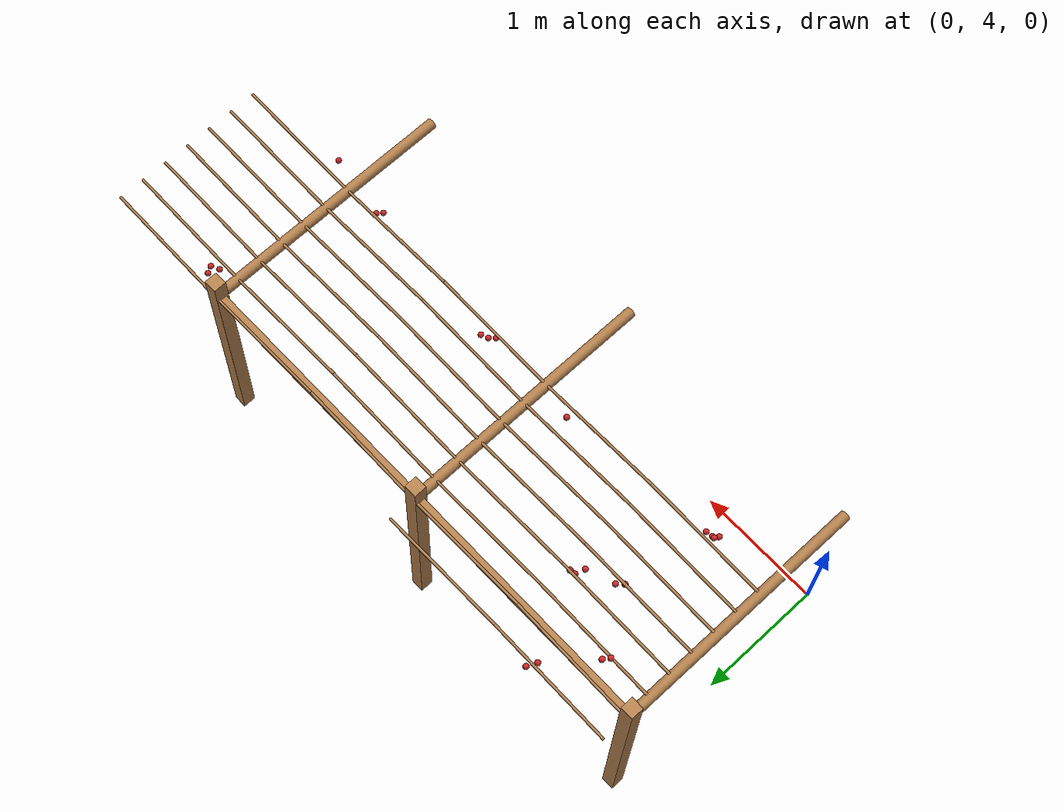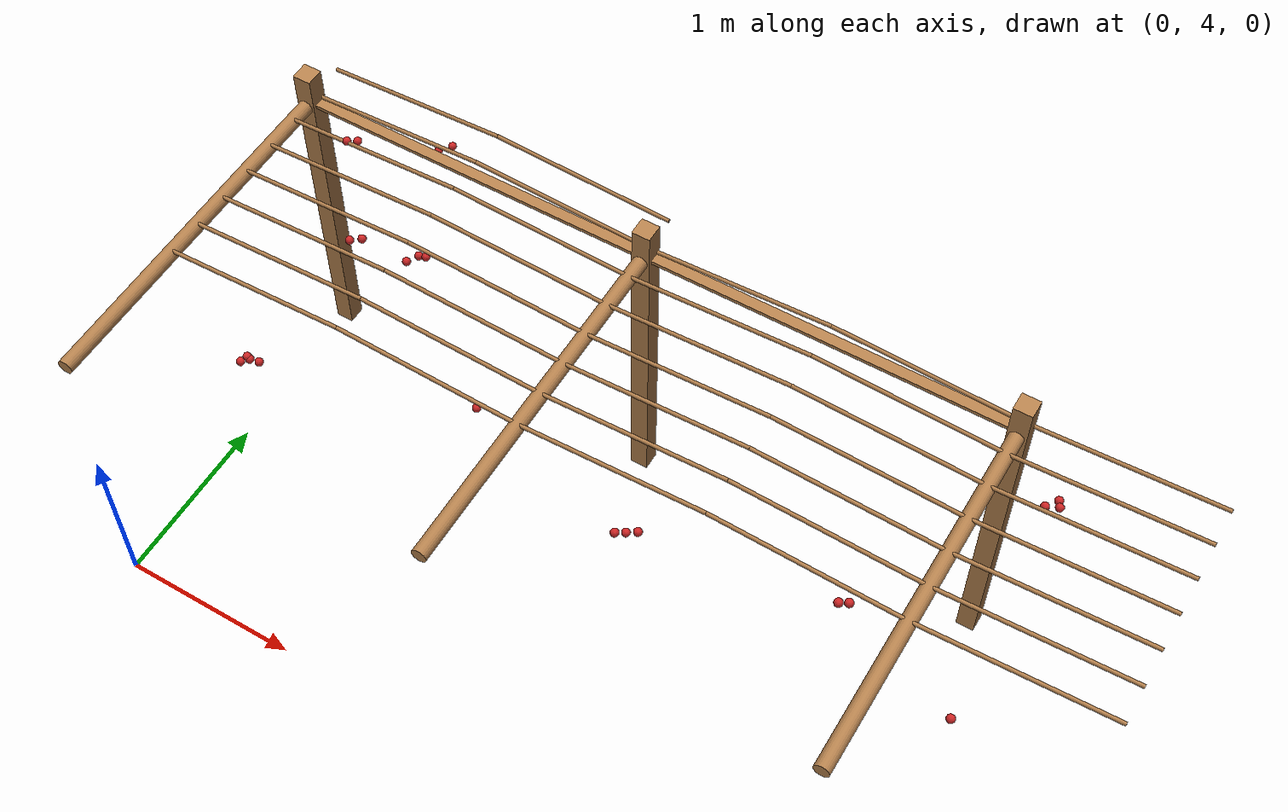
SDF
<sdf version="1.4">
 <model name="pergola">
  <include><name>post_3</name><pose>0.0 6.0 0 0 0 0</pose><uri>model://post</uri></include>
  <include><name>post_14</name><pose>2.0 6.0 0 0 0 0</pose><uri>model://post</uri></include>
  <include><name>post_25</name><pose>4.0 6.0 0 0 0 0</pose><uri>model://post</uri></include>
  <link name="beam_3">
   <pose>1.0 6.0 1.81 0 0 0</pose>
   <collision name="collision"><geometry><box><size>2.0 0.06 0.02</size></box></geometry></collision>
   <visual name="visual">
    <geometry><box><size>2.0 0.06 0.02</size></box></geometry>
    <material><script><name>Gazebo/Wood</name></script></material>
   </visual>
   <inertial>
    <mass>5</mass>
    <inertia>
     <ixx>0.0016666666666666668</ixx>
     <ixy>0.0</ixy>
     <ixz>0.0</ixz>
     <iyy>1.6681666666666664</iyy>
     <iyz>0.0</iyz>
     <izz>1.6668333333333332</izz>
    </inertia>
   </inertial>
  </link>
  <link name="beam_14">
   <pose>3.0 6.0 1.81 0 0 0</pose>
   <collision name="collision"><geometry><box><size>2.0 0.06 0.02</size></box></geometry></collision>
   <visual name="visual">
    <geometry><box><size>2.0 0.06 0.02</size></box></geometry>
    <material><script><name>Gazebo/Wood</name></script></material>
   </visual>
   <inertial>
    <mass>5</mass>
    <inertia>
     <ixx>0.0016666666666666668</ixx>
     <ixy>0.0</ixy>
     <ixz>0.0</ixz>
     <iyy>1.6681666666666664</iyy>
     <iyz>0.0</iyz>
     <izz>1.6668333333333332</izz>
    </inertia>
   </inertial>
  </link>
  <link name="baseBranch_2">
   <pose>0.0 5.0 1.8 1.5707963267948966 0 0</pose>
   <collision name="collision">
    <geometry><cylinder><radius>0.04</radius><length>1.94</length></cylinder></geometry>
   </collision>
   <visual name="visual">
    <geometry><cylinder><radius>0.04</radius><length>1.94</length></cylinder></geometry>
    <material><script><name>Gazebo/WoodFloor</name></script></material>
   </visual>
   <inertial>
    <mass>10</mass>
    <inertia>
     <ixx>3.140333333333333</ixx>
     <ixy>0.0</ixy>
     <ixz>0.0</ixz>
     <iyy>3.140333333333333</iyy>
     <iyz>0.0</iyz>
     <izz>0.008</izz>
    </inertia>
   </inertial>
  </link>
  <link name="baseBranch_12">
   <pose>2.0 5.0 1.8 1.5707963267948966 0 0</pose>
   <collision name="collision">
    <geometry><cylinder><radius>0.04</radius><length>1.94</length></cylinder></geometry>
   </collision>
   <visual name="visual">
    <geometry><cylinder><radius>0.04</radius><length>1.94</length></cylinder></geometry>
    <material><script><name>Gazebo/WoodFloor</name></script></material>
   </visual>
   <inertial>
    <mass>10</mass>
    <inertia>
     <ixx>3.140333333333333</ixx>
     <ixy>0.0</ixy>
     <ixz>0.0</ixz>
     <iyy>3.140333333333333</iyy>
     <iyz>0.0</iyz>
     <izz>0.008</izz>
    </inertia>
   </inertial>
  </link>
  <link name="baseBranch_22">
   <pose>4.0 5.0 1.8 1.5707963267948966 0 0</pose>
   <collision name="collision">
    <geometry><cylinder><radius>0.04</radius><length>1.94</length></cylinder></geometry>
   </collision>
   <visual name="visual">
    <geometry><cylinder><radius>0.04</radius><length>1.94</length></cylinder></geometry>
    <material><script><name>Gazebo/WoodFloor</name></script></material>
   </visual>
   <inertial>
    <mass>10</mass>
    <inertia>
     <ixx>3.140333333333333</ixx>
     <ixy>0.0</ixy>
     <ixz>0.0</ixz>
     <iyy>3.140333333333333</iyy>
     <iyz>0.0</iyz>
     <izz>0.008</izz>
    </inertia>
   </inertial>
  </link>
  <link name="vine_48">
   <pose>0.5 4.830000000000001 1.85 0 1.5208379310729538 0</pose>
   <collision name="collision">
    <geometry><cylinder><radius>0.01</radius><length>1.0012492197250393</length></cylinder></geometry>
   </collision>
   <visual name="visual">
    <geometry><cylinder><radius>0.01</radius><length>1.0012492197250393</length></cylinder></geometry>
    <material><script><name>Gazebo/WoodFloor</name></script></material>
   </visual>
   <inertial>
    <mass>5</mass>
    <inertia>
     <ixx>0.41783333333333345</ixx>
     <ixy>0.0</ixy>
     <ixz>0.0</ixz>
     <iyy>0.41783333333333345</iyy>
     <iyz>0.0</iyz>
     <izz>0.00025</izz>
    </inertia>
   </inertial>
  </link>
  <link name="vine_49">
   <pose>1.5 4.830000000000001 1.85 0 -1.5208379310729538 0</pose>
   <collision name="collision">
    <geometry><cylinder><radius>0.01</radius><length>1.0012492197250393</length></cylinder></geometry>
   </collision>
   <visual name="visual">
    <geometry><cylinder><radius>0.01</radius><length>1.0012492197250393</length></cylinder></geometry>
    <material><script><name>Gazebo/WoodFloor</name></script></material>
   </visual>
   <inertial>
    <mass>5</mass>
    <inertia>
     <ixx>0.41783333333333345</ixx>
     <ixy>0.0</ixy>
     <ixz>0.0</ixz>
     <iyy>0.41783333333333345</iyy>
     <iyz>0.0</iyz>
     <izz>0.00025</izz>
    </inertia>
   </inertial>
  </link>
  <link name="vine_50">
   <pose>0.5 5.03 1.85 0 1.5208379310729538 0</pose>
   <collision name="collision">
    <geometry><cylinder><radius>0.01</radius><length>1.0012492197250393</length></cylinder></geometry>
   </collision>
   <visual name="visual">
    <geometry><cylinder><radius>0.01</radius><length>1.0012492197250393</length></cylinder></geometry>
    <material><script><name>Gazebo/WoodFloor</name></script></material>
   </visual>
   <inertial>
    <mass>5</mass>
    <inertia>
     <ixx>0.41783333333333345</ixx>
     <ixy>0.0</ixy>
     <ixz>0.0</ixz>
     <iyy>0.41783333333333345</iyy>
     <iyz>0.0</iyz>
     <izz>0.00025</izz>
    </inertia>
   </inertial>
  </link>
  <link name="vine_51">
   <pose>1.5 5.03 1.85 0 -1.5208379310729538 0</pose>
   <collision name="collision">
    <geometry><cylinder><radius>0.01</radius><length>1.0012492197250393</length></cylinder></geometry>
   </collision>
   <visual name="visual">
    <geometry><cylinder><radius>0.01</radius><length>1.0012492197250393</length></cylinder></geometry>
    <material><script><name>Gazebo/WoodFloor</name></script></material>
   </visual>
   <inertial>
    <mass>5</mass>
    <inertia>
     <ixx>0.41783333333333345</ixx>
     <ixy>0.0</ixy>
     <ixz>0.0</ixz>
     <iyy>0.41783333333333345</iyy>
     <iyz>0.0</iyz>
     <izz>0.00025</izz>
    </inertia>
   </inertial>
  </link>
  <link name="vine_52">
   <pose>0.5 5.23 1.85 0 1.5208379310729538 0</pose>
   <collision name="collision">
    <geometry><cylinder><radius>0.01</radius><length>1.0012492197250393</length></cylinder></geometry>
   </collision>
   <visual name="visual">
    <geometry><cylinder><radius>0.01</radius><length>1.0012492197250393</length></cylinder></geometry>
    <material><script><name>Gazebo/WoodFloor</name></script></material>
   </visual>
   <inertial>
    <mass>5</mass>
    <inertia>
     <ixx>0.41783333333333345</ixx>
     <ixy>0.0</ixy>
     <ixz>0.0</ixz>
     <iyy>0.41783333333333345</iyy>
     <iyz>0.0</iyz>
     <izz>0.00025</izz>
    </inertia>
   </inertial>
  </link>
  <link name="vine_53">
   <pose>1.5 5.23 1.85 0 -1.5208379310729538 0</pose>
   <collision name="collision">
    <geometry><cylinder><radius>0.01</radius><length>1.0012492197250393</length></cylinder></geometry>
   </collision>
   <visual name="visual">
    <geometry><cylinder><radius>0.01</radius><length>1.0012492197250393</length></cylinder></geometry>
    <material><script><name>Gazebo/WoodFloor</name></script></material>
   </visual>
   <inertial>
    <mass>5</mass>
    <inertia>
     <ixx>0.41783333333333345</ixx>
     <ixy>0.0</ixy>
     <ixz>0.0</ixz>
     <iyy>0.41783333333333345</iyy>
     <iyz>0.0</iyz>
     <izz>0.00025</izz>
    </inertia>
   </inertial>
  </link>
  <link name="vine_54">
   <pose>0.5 5.430000000000001 1.85 0 1.5208379310729538 0</pose>
   <collision name="collision">
    <geometry><cylinder><radius>0.01</radius><length>1.0012492197250393</length></cylinder></geometry>
   </collision>
   <visual name="visual">
    <geometry><cylinder><radius>0.01</radius><length>1.0012492197250393</length></cylinder></geometry>
    <material><script><name>Gazebo/WoodFloor</name></script></material>
   </visual>
   <inertial>
    <mass>5</mass>
    <inertia>
     <ixx>0.41783333333333345</ixx>
     <ixy>0.0</ixy>
     <ixz>0.0</ixz>
     <iyy>0.41783333333333345</iyy>
     <iyz>0.0</iyz>
     <izz>0.00025</izz>
    </inertia>
   </inertial>
  </link>
  <link name="vine_55">
   <pose>1.5 5.430000000000001 1.85 0 -1.5208379310729538 0</pose>
   <collision name="collision">
    <geometry><cylinder><radius>0.01</radius><length>1.0012492197250393</length></cylinder></geometry>
   </collision>
   <visual name="visual">
    <geometry><cylinder><radius>0.01</radius><length>1.0012492197250393</length></cylinder></geometry>
    <material><script><name>Gazebo/WoodFloor</name></script></material>
   </visual>
   <inertial>
    <mass>5</mass>
    <inertia>
     <ixx>0.41783333333333345</ixx>
     <ixy>0.0</ixy>
     <ixz>0.0</ixz>
     <iyy>0.41783333333333345</iyy>
     <iyz>0.0</iyz>
     <izz>0.00025</izz>
    </inertia>
   </inertial>
  </link>
  <link name="vine_56">
   <pose>0.5 5.630000000000001 1.85 0 1.5208379310729538 0</pose>
   <collision name="collision">
    <geometry><cylinder><radius>0.01</radius><length>1.0012492197250393</length></cylinder></geometry>
   </collision>
   <visual name="visual">
    <geometry><cylinder><radius>0.01</radius><length>1.0012492197250393</length></cylinder></geometry>
    <material><script><name>Gazebo/WoodFloor</name></script></material>
   </visual>
   <inertial>
    <mass>5</mass>
    <inertia>
     <ixx>0.41783333333333345</ixx>
     <ixy>0.0</ixy>
     <ixz>0.0</ixz>
     <iyy>0.41783333333333345</iyy>
     <iyz>0.0</iyz>
     <izz>0.00025</izz>
    </inertia>
   </inertial>
  </link>
  <link name="vine_57">
   <pose>1.5 5.630000000000001 1.85 0 -1.5208379310729538 0</pose>
   <collision name="collision">
    <geometry><cylinder><radius>0.01</radius><length>1.0012492197250393</length></cylinder></geometry>
   </collision>
   <visual name="visual">
    <geometry><cylinder><radius>0.01</radius><length>1.0012492197250393</length></cylinder></geometry>
    <material><script><name>Gazebo/WoodFloor</name></script></material>
   </visual>
   <inertial>
    <mass>5</mass>
    <inertia>
     <ixx>0.41783333333333345</ixx>
     <ixy>0.0</ixy>
     <ixz>0.0</ixz>
     <iyy>0.41783333333333345</iyy>
     <iyz>0.0</iyz>
     <izz>0.00025</izz>
    </inertia>
   </inertial>
  </link>
  <link name="vine_58">
   <pose>0.5 5.830000000000001 1.85 0 1.5208379310729538 0</pose>
   <collision name="collision">
    <geometry><cylinder><radius>0.01</radius><length>1.0012492197250393</length></cylinder></geometry>
   </collision>
   <visual name="visual">
    <geometry><cylinder><radius>0.01</radius><length>1.0012492197250393</length></cylinder></geometry>
    <material><script><name>Gazebo/WoodFloor</name></script></material>
   </visual>
   <inertial>
    <mass>5</mass>
    <inertia>
     <ixx>0.41783333333333345</ixx>
     <ixy>0.0</ixy>
     <ixz>0.0</ixz>
     <iyy>0.41783333333333345</iyy>
     <iyz>0.0</iyz>
     <izz>0.00025</izz>
    </inertia>
   </inertial>
  </link>
  <link name="vine_59">
   <pose>1.5 5.830000000000001 1.85 0 -1.5208379310729538 0</pose>
   <collision name="collision">
    <geometry><cylinder><radius>0.01</radius><length>1.0012492197250393</length></cylinder></geometry>
   </collision>
   <visual name="visual">
    <geometry><cylinder><radius>0.01</radius><length>1.0012492197250393</length></cylinder></geometry>
    <material><script><name>Gazebo/WoodFloor</name></script></material>
   </visual>
   <inertial>
    <mass>5</mass>
    <inertia>
     <ixx>0.41783333333333345</ixx>
     <ixy>0.0</ixy>
     <ixz>0.0</ixz>
     <iyy>0.41783333333333345</iyy>
     <iyz>0.0</iyz>
     <izz>0.00025</izz>
    </inertia>
   </inertial>
  </link>
  <link name="vine_60">
   <pose>0.5 6.03 1.85 0 1.5208379310729538 0</pose>
   <collision name="collision">
    <geometry><cylinder><radius>0.01</radius><length>1.0012492197250393</length></cylinder></geometry>
   </collision>
   <visual name="visual">
    <geometry><cylinder><radius>0.01</radius><length>1.0012492197250393</length></cylinder></geometry>
    <material><script><name>Gazebo/WoodFloor</name></script></material>
   </visual>
   <inertial>
    <mass>5</mass>
    <inertia>
     <ixx>0.41783333333333345</ixx>
     <ixy>0.0</ixy>
     <ixz>0.0</ixz>
     <iyy>0.41783333333333345</iyy>
     <iyz>0.0</iyz>
     <izz>0.00025</izz>
    </inertia>
   </inertial>
  </link>
  <link name="vine_61">
   <pose>1.5 6.03 1.85 0 -1.5208379310729538 0</pose>
   <collision name="collision">
    <geometry><cylinder><radius>0.01</radius><length>1.0012492197250393</length></cylinder></geometry>
   </collision>
   <visual name="visual">
    <geometry><cylinder><radius>0.01</radius><length>1.0012492197250393</length></cylinder></geometry>
    <material><script><name>Gazebo/WoodFloor</name></script></material>
   </visual>
   <inertial>
    <mass>5</mass>
    <inertia>
     <ixx>0.41783333333333345</ixx>
     <ixy>0.0</ixy>
     <ixz>0.0</ixz>
     <iyy>0.41783333333333345</iyy>
     <iyz>0.0</iyz>
     <izz>0.00025</izz>
    </inertia>
   </inertial>
  </link>
  <link name="vine_62">
   <pose>0.5 6.23 1.85 0 1.5208379310729538 0</pose>
   <collision name="collision">
    <geometry><cylinder><radius>0.01</radius><length>1.0012492197250393</length></cylinder></geometry>
   </collision>
   <visual name="visual">
    <geometry><cylinder><radius>0.01</radius><length>1.0012492197250393</length></cylinder></geometry>
    <material><script><name>Gazebo/WoodFloor</name></script></material>
   </visual>
   <inertial>
    <mass>5</mass>
    <inertia>
     <ixx>0.41783333333333345</ixx>
     <ixy>0.0</ixy>
     <ixz>0.0</ixz>
     <iyy>0.41783333333333345</iyy>
     <iyz>0.0</iyz>
     <izz>0.00025</izz>
    </inertia>
   </inertial>
  </link>
  <link name="vine_63">
   <pose>1.5 6.23 1.85 0 -1.5208379310729538 0</pose>
   <collision name="collision">
    <geometry><cylinder><radius>0.01</radius><length>1.0012492197250393</length></cylinder></geometry>
   </collision>
   <visual name="visual">
    <geometry><cylinder><radius>0.01</radius><length>1.0012492197250393</length></cylinder></geometry>
    <material><script><name>Gazebo/WoodFloor</name></script></material>
   </visual>
   <inertial>
    <mass>5</mass>
    <inertia>
     <ixx>0.41783333333333345</ixx>
     <ixy>0.0</ixy>
     <ixz>0.0</ixz>
     <iyy>0.41783333333333345</iyy>
     <iyz>0.0</iyz>
     <izz>0.00025</izz>
    </inertia>
   </inertial>
  </link>
  <link name="vine_248">
   <pose>2.5 4.830000000000001 1.85 0 1.5208379310729538 0</pose>
   <collision name="collision">
    <geometry><cylinder><radius>0.01</radius><length>1.0012492197250393</length></cylinder></geometry>
   </collision>
   <visual name="visual">
    <geometry><cylinder><radius>0.01</radius><length>1.0012492197250393</length></cylinder></geometry>
    <material><script><name>Gazebo/WoodFloor</name></script></material>
   </visual>
   <inertial>
    <mass>5</mass>
    <inertia>
     <ixx>0.41783333333333345</ixx>
     <ixy>0.0</ixy>
     <ixz>0.0</ixz>
     <iyy>0.41783333333333345</iyy>
     <iyz>0.0</iyz>
     <izz>0.00025</izz>
    </inertia>
   </inertial>
  </link>
  <link name="vine_249">
   <pose>3.5 4.830000000000001 1.85 0 -1.5208379310729538 0</pose>
   <collision name="collision">
    <geometry><cylinder><radius>0.01</radius><length>1.0012492197250393</length></cylinder></geometry>
   </collision>
   <visual name="visual">
    <geometry><cylinder><radius>0.01</radius><length>1.0012492197250393</length></cylinder></geometry>
    <material><script><name>Gazebo/WoodFloor</name></script></material>
   </visual>
   <inertial>
    <mass>5</mass>
    <inertia>
     <ixx>0.41783333333333345</ixx>
     <ixy>0.0</ixy>
     <ixz>0.0</ixz>
     <iyy>0.41783333333333345</iyy>
     <iyz>0.0</iyz>
     <izz>0.00025</izz>
    </inertia>
   </inertial>
  </link>
  <link name="vine_250">
   <pose>2.5 5.03 1.85 0 1.5208379310729538 0</pose>
   <collision name="collision">
    <geometry><cylinder><radius>0.01</radius><length>1.0012492197250393</length></cylinder></geometry>
   </collision>
   <visual name="visual">
    <geometry><cylinder><radius>0.01</radius><length>1.0012492197250393</length></cylinder></geometry>
    <material><script><name>Gazebo/WoodFloor</name></script></material>
   </visual>
   <inertial>
    <mass>5</mass>
    <inertia>
     <ixx>0.41783333333333345</ixx>
     <ixy>0.0</ixy>
     <ixz>0.0</ixz>
     <iyy>0.41783333333333345</iyy>
     <iyz>0.0</iyz>
     <izz>0.00025</izz>
    </inertia>
   </inertial>
  </link>
  <link name="vine_251">
   <pose>3.5 5.03 1.85 0 -1.5208379310729538 0</pose>
   <collision name="collision">
    <geometry><cylinder><radius>0.01</radius><length>1.0012492197250393</length></cylinder></geometry>
   </collision>
   <visual name="visual">
    <geometry><cylinder><radius>0.01</radius><length>1.0012492197250393</length></cylinder></geometry>
    <material><script><name>Gazebo/WoodFloor</name></script></material>
   </visual>
   <inertial>
    <mass>5</mass>
    <inertia>
     <ixx>0.41783333333333345</ixx>
     <ixy>0.0</ixy>
     <ixz>0.0</ixz>
     <iyy>0.41783333333333345</iyy>
     <iyz>0.0</iyz>
     <izz>0.00025</izz>
    </inertia>
   </inertial>
  </link>
  <link name="vine_252">
   <pose>2.5 5.23 1.85 0 1.5208379310729538 0</pose>
   <collision name="collision">
    <geometry><cylinder><radius>0.01</radius><length>1.0012492197250393</length></cylinder></geometry>
   </collision>
   <visual name="visual">
    <geometry><cylinder><radius>0.01</radius><length>1.0012492197250393</length></cylinder></geometry>
    <material><script><name>Gazebo/WoodFloor</name></script></material>
   </visual>
   <inertial>
    <mass>5</mass>
    <inertia>
     <ixx>0.41783333333333345</ixx>
     <ixy>0.0</ixy>
     <ixz>0.0</ixz>
     <iyy>0.41783333333333345</iyy>
     <iyz>0.0</iyz>
     <izz>0.00025</izz>
    </inertia>
   </inertial>
  </link>
  <link name="vine_253">
   <pose>3.5 5.23 1.85 0 -1.5208379310729538 0</pose>
   <collision name="collision">
    <geometry><cylinder><radius>0.01</radius><length>1.0012492197250393</length></cylinder></geometry>
   </collision>
   <visual name="visual">
    <geometry><cylinder><radius>0.01</radius><length>1.0012492197250393</length></cylinder></geometry>
    <material><script><name>Gazebo/WoodFloor</name></script></material>
   </visual>
   <inertial>
    <mass>5</mass>
    <inertia>
     <ixx>0.41783333333333345</ixx>
     <ixy>0.0</ixy>
     <ixz>0.0</ixz>
     <iyy>0.41783333333333345</iyy>
     <iyz>0.0</iyz>
     <izz>0.00025</izz>
    </inertia>
   </inertial>
  </link>
  <link name="vine_254">
   <pose>2.5 5.430000000000001 1.85 0 1.5208379310729538 0</pose>
   <collision name="collision">
    <geometry><cylinder><radius>0.01</radius><length>1.0012492197250393</length></cylinder></geometry>
   </collision>
   <visual name="visual">
    <geometry><cylinder><radius>0.01</radius><length>1.0012492197250393</length></cylinder></geometry>
    <material><script><name>Gazebo/WoodFloor</name></script></material>
   </visual>
   <inertial>
    <mass>5</mass>
    <inertia>
     <ixx>0.41783333333333345</ixx>
     <ixy>0.0</ixy>
     <ixz>0.0</ixz>
     <iyy>0.41783333333333345</iyy>
     <iyz>0.0</iyz>
     <izz>0.00025</izz>
    </inertia>
   </inertial>
  </link>
  <link name="vine_255">
   <pose>3.5 5.430000000000001 1.85 0 -1.5208379310729538 0</pose>
   <collision name="collision">
    <geometry><cylinder><radius>0.01</radius><length>1.0012492197250393</length></cylinder></geometry>
   </collision>
   <visual name="visual">
    <geometry><cylinder><radius>0.01</radius><length>1.0012492197250393</length></cylinder></geometry>
    <material><script><name>Gazebo/WoodFloor</name></script></material>
   </visual>
   <inertial>
    <mass>5</mass>
    <inertia>
     <ixx>0.41783333333333345</ixx>
     <ixy>0.0</ixy>
     <ixz>0.0</ixz>
     <iyy>0.41783333333333345</iyy>
     <iyz>0.0</iyz>
     <izz>0.00025</izz>
    </inertia>
   </inertial>
  </link>
  <link name="vine_256">
   <pose>2.5 5.630000000000001 1.85 0 1.5208379310729538 0</pose>
   <collision name="collision">
    <geometry><cylinder><radius>0.01</radius><length>1.0012492197250393</length></cylinder></geometry>
   </collision>
   <visual name="visual">
    <geometry><cylinder><radius>0.01</radius><length>1.0012492197250393</length></cylinder></geometry>
    <material><script><name>Gazebo/WoodFloor</name></script></material>
   </visual>
   <inertial>
    <mass>5</mass>
    <inertia>
     <ixx>0.41783333333333345</ixx>
     <ixy>0.0</ixy>
     <ixz>0.0</ixz>
     <iyy>0.41783333333333345</iyy>
     <iyz>0.0</iyz>
     <izz>0.00025</izz>
    </inertia>
   </inertial>
  </link>
  <link name="vine_257">
   <pose>3.5 5.630000000000001 1.85 0 -1.5208379310729538 0</pose>
   <collision name="collision">
    <geometry><cylinder><radius>0.01</radius><length>1.0012492197250393</length></cylinder></geometry>
   </collision>
   <visual name="visual">
    <geometry><cylinder><radius>0.01</radius><length>1.0012492197250393</length></cylinder></geometry>
    <material><script><name>Gazebo/WoodFloor</name></script></material>
   </visual>
   <inertial>
    <mass>5</mass>
    <inertia>
     <ixx>0.41783333333333345</ixx>
     <ixy>0.0</ixy>
     <ixz>0.0</ixz>
     <iyy>0.41783333333333345</iyy>
     <iyz>0.0</iyz>
     <izz>0.00025</izz>
    </inertia>
   </inertial>
  </link>
  <link name="vine_258">
   <pose>2.5 5.830000000000001 1.85 0 1.5208379310729538 0</pose>
   <collision name="collision">
    <geometry><cylinder><radius>0.01</radius><length>1.0012492197250393</length></cylinder></geometry>
   </collision>
   <visual name="visual">
    <geometry><cylinder><radius>0.01</radius><length>1.0012492197250393</length></cylinder></geometry>
    <material><script><name>Gazebo/WoodFloor</name></script></material>
   </visual>
   <inertial>
    <mass>5</mass>
    <inertia>
     <ixx>0.41783333333333345</ixx>
     <ixy>0.0</ixy>
     <ixz>0.0</ixz>
     <iyy>0.41783333333333345</iyy>
     <iyz>0.0</iyz>
     <izz>0.00025</izz>
    </inertia>
   </inertial>
  </link>
  <link name="vine_259">
   <pose>3.5 5.830000000000001 1.85 0 -1.5208379310729538 0</pose>
   <collision name="collision">
    <geometry><cylinder><radius>0.01</radius><length>1.0012492197250393</length></cylinder></geometry>
   </collision>
   <visual name="visual">
    <geometry><cylinder><radius>0.01</radius><length>1.0012492197250393</length></cylinder></geometry>
    <material><script><name>Gazebo/WoodFloor</name></script></material>
   </visual>
   <inertial>
    <mass>5</mass>
    <inertia>
     <ixx>0.41783333333333345</ixx>
     <ixy>0.0</ixy>
     <ixz>0.0</ixz>
     <iyy>0.41783333333333345</iyy>
     <iyz>0.0</iyz>
     <izz>0.00025</izz>
    </inertia>
   </inertial>
  </link>
  <link name="vine_260">
   <pose>2.5 6.03 1.85 0 1.5208379310729538 0</pose>
   <collision name="collision">
    <geometry><cylinder><radius>0.01</radius><length>1.0012492197250393</length></cylinder></geometry>
   </collision>
   <visual name="visual">
    <geometry><cylinder><radius>0.01</radius><length>1.0012492197250393</length></cylinder></geometry>
    <material><script><name>Gazebo/WoodFloor</name></script></material>
   </visual>
   <inertial>
    <mass>5</mass>
    <inertia>
     <ixx>0.41783333333333345</ixx>
     <ixy>0.0</ixy>
     <ixz>0.0</ixz>
     <iyy>0.41783333333333345</iyy>
     <iyz>0.0</iyz>
     <izz>0.00025</izz>
    </inertia>
   </inertial>
  </link>
  <link name="vine_261">
   <pose>3.5 6.03 1.85 0 -1.5208379310729538 0</pose>
   <collision name="collision">
    <geometry><cylinder><radius>0.01</radius><length>1.0012492197250393</length></cylinder></geometry>
   </collision>
   <visual name="visual">
    <geometry><cylinder><radius>0.01</radius><length>1.0012492197250393</length></cylinder></geometry>
    <material><script><name>Gazebo/WoodFloor</name></script></material>
   </visual>
   <inertial>
    <mass>5</mass>
    <inertia>
     <ixx>0.41783333333333345</ixx>
     <ixy>0.0</ixy>
     <ixz>0.0</ixz>
     <iyy>0.41783333333333345</iyy>
     <iyz>0.0</iyz>
     <izz>0.00025</izz>
    </inertia>
   </inertial>
  </link>
  <link name="vine_448">
   <pose>4.5 4.830000000000001 1.85 0 1.5208379310729538 0</pose>
   <collision name="collision">
    <geometry><cylinder><radius>0.01</radius><length>1.0012492197250393</length></cylinder></geometry>
   </collision>
   <visual name="visual">
    <geometry><cylinder><radius>0.01</radius><length>1.0012492197250393</length></cylinder></geometry>
    <material><script><name>Gazebo/WoodFloor</name></script></material>
   </visual>
   <inertial>
    <mass>5</mass>
    <inertia>
     <ixx>0.41783333333333345</ixx>
     <ixy>0.0</ixy>
     <ixz>0.0</ixz>
     <iyy>0.41783333333333345</iyy>
     <iyz>0.0</iyz>
     <izz>0.00025</izz>
    </inertia>
   </inertial>
  </link>
  <link name="vine_450">
   <pose>4.5 5.03 1.85 0 1.5208379310729538 0</pose>
   <collision name="collision">
    <geometry><cylinder><radius>0.01</radius><length>1.0012492197250393</length></cylinder></geometry>
   </collision>
   <visual name="visual">
    <geometry><cylinder><radius>0.01</radius><length>1.0012492197250393</length></cylinder></geometry>
    <material><script><name>Gazebo/WoodFloor</name></script></material>
   </visual>
   <inertial>
    <mass>5</mass>
    <inertia>
     <ixx>0.41783333333333345</ixx>
     <ixy>0.0</ixy>
     <ixz>0.0</ixz>
     <iyy>0.41783333333333345</iyy>
     <iyz>0.0</iyz>
     <izz>0.00025</izz>
    </inertia>
   </inertial>
  </link>
  <link name="vine_452">
   <pose>4.5 5.23 1.85 0 1.5208379310729538 0</pose>
   <collision name="collision">
    <geometry><cylinder><radius>0.01</radius><length>1.0012492197250393</length></cylinder></geometry>
   </collision>
   <visual name="visual">
    <geometry><cylinder><radius>0.01</radius><length>1.0012492197250393</length></cylinder></geometry>
    <material><script><name>Gazebo/WoodFloor</name></script></material>
   </visual>
   <inertial>
    <mass>5</mass>
    <inertia>
     <ixx>0.41783333333333345</ixx>
     <ixy>0.0</ixy>
     <ixz>0.0</ixz>
     <iyy>0.41783333333333345</iyy>
     <iyz>0.0</iyz>
     <izz>0.00025</izz>
    </inertia>
   </inertial>
  </link>
  <link name="vine_454">
   <pose>4.5 5.430000000000001 1.85 0 1.5208379310729538 0</pose>
   <collision name="collision">
    <geometry><cylinder><radius>0.01</radius><length>1.0012492197250393</length></cylinder></geometry>
   </collision>
   <visual name="visual">
    <geometry><cylinder><radius>0.01</radius><length>1.0012492197250393</length></cylinder></geometry>
    <material><script><name>Gazebo/WoodFloor</name></script></material>
   </visual>
   <inertial>
    <mass>5</mass>
    <inertia>
     <ixx>0.41783333333333345</ixx>
     <ixy>0.0</ixy>
     <ixz>0.0</ixz>
     <iyy>0.41783333333333345</iyy>
     <iyz>0.0</iyz>
     <izz>0.00025</izz>
    </inertia>
   </inertial>
  </link>
  <link name="vine_456">
   <pose>4.5 5.630000000000001 1.85 0 1.5208379310729538 0</pose>
   <collision name="collision">
    <geometry><cylinder><radius>0.01</radius><length>1.0012492197250393</length></cylinder></geometry>
   </collision>
   <visual name="visual">
    <geometry><cylinder><radius>0.01</radius><length>1.0012492197250393</length></cylinder></geometry>
    <material><script><name>Gazebo/WoodFloor</name></script></material>
   </visual>
   <inertial>
    <mass>5</mass>
    <inertia>
     <ixx>0.41783333333333345</ixx>
     <ixy>0.0</ixy>
     <ixz>0.0</ixz>
     <iyy>0.41783333333333345</iyy>
     <iyz>0.0</iyz>
     <izz>0.00025</izz>
    </inertia>
   </inertial>
  </link>
  <link name="vine_458">
   <pose>4.5 5.830000000000001 1.85 0 1.5208379310729538 0</pose>
   <collision name="collision">
    <geometry><cylinder><radius>0.01</radius><length>1.0012492197250393</length></cylinder></geometry>
   </collision>
   <visual name="visual">
    <geometry><cylinder><radius>0.01</radius><length>1.0012492197250393</length></cylinder></geometry>
    <material><script><name>Gazebo/WoodFloor</name></script></material>
   </visual>
   <inertial>
    <mass>5</mass>
    <inertia>
     <ixx>0.41783333333333345</ixx>
     <ixy>0.0</ixy>
     <ixz>0.0</ixz>
     <iyy>0.41783333333333345</iyy>
     <iyz>0.0</iyz>
     <izz>0.00025</izz>
    </inertia>
   </inertial>
  </link>
  <link name="vine_460">
   <pose>4.5 6.03 1.85 0 1.5208379310729538 0</pose>
   <collision name="collision">
    <geometry><cylinder><radius>0.01</radius><length>1.0012492197250393</length></cylinder></geometry>
   </collision>
   <visual name="visual">
    <geometry><cylinder><radius>0.01</radius><length>1.0012492197250393</length></cylinder></geometry>
    <material><script><name>Gazebo/WoodFloor</name></script></material>
   </visual>
   <inertial>
    <mass>5</mass>
    <inertia>
     <ixx>0.41783333333333345</ixx>
     <ixy>0.0</ixy>
     <ixz>0.0</ixz>
     <iyy>0.41783333333333345</iyy>
     <iyz>0.0</iyz>
     <izz>0.00025</izz>
    </inertia>
   </inertial>
  </link>
  <link name="fruit_0">
   <pose>1.756106127778663 4.862732927815126 1.7308228529600262 0 0 0</pose>
   <collision name="fruit_collision_0"><geometry><sphere><radius>0.022</radius></sphere></geometry></collision>
   <visual name="visual">
    <geometry><sphere><radius>0.022</radius></sphere></geometry>
    <material><script><name>Gazebo/Red</name></script></material>
   </visual>
   <inertial>
    <mass>0.05</mass>
    <inertia>
     <ixx>9.679999999999999e-06</ixx>
     <ixy>0.0</ixy>
     <ixz>0.0</ixz>
     <iyy>9.679999999999999e-06</iyy>
     <iyz>0.0</iyz>
     <izz>9.679999999999999e-06</izz>
    </inertia>
   </inertial>
   <sensor name="fruit_contact_0" type="contact">
    <contact><collision>fruit_collision_0</collision></contact>
   </sensor>
  </link>
  <link name="fruit_8">
   <pose>4.24152316012437 5.817809719018431 1.5848729076348416 0 0 0</pose>
   <collision name="fruit_collision_8"><geometry><sphere><radius>0.022</radius></sphere></geometry></collision>
   <visual name="visual">
    <geometry><sphere><radius>0.022</radius></sphere></geometry>
    <material><script><name>Gazebo/Red</name></script></material>
   </visual>
   <inertial>
    <mass>0.05</mass>
    <inertia>
     <ixx>9.679999999999999e-06</ixx>
     <ixy>0.0</ixy>
     <ixz>0.0</ixz>
     <iyy>9.679999999999999e-06</iyy>
     <iyz>0.0</iyz>
     <izz>9.679999999999999e-06</izz>
    </inertia>
   </inertial>
   <sensor name="fruit_contact_8" type="contact">
    <contact><collision>fruit_collision_8</collision></contact>
   </sensor>
  </link>
  <link name="fruit_66">
   <pose>0.9251625525679941 5.483167061307723 1.6218113024512208 0 0 0</pose>
   <collision name="fruit_collision_66"><geometry><sphere><radius>0.022</radius></sphere></geometry></collision>
   <visual name="visual">
    <geometry><sphere><radius>0.022</radius></sphere></geometry>
    <material><script><name>Gazebo/Red</name></script></material>
   </visual>
   <inertial>
    <mass>0.05</mass>
    <inertia>
     <ixx>9.679999999999999e-06</ixx>
     <ixy>0.0</ixy>
     <ixz>0.0</ixz>
     <iyy>9.679999999999999e-06</iyy>
     <iyz>0.0</iyz>
     <izz>9.679999999999999e-06</izz>
    </inertia>
   </inertial>
   <sensor name="fruit_contact_66" type="contact">
    <contact><collision>fruit_collision_66</collision></contact>
   </sensor>
  </link>
  <link name="fruit_97">
   <pose>0.6720921263237107 6.155036314667341 1.653248220244885 0 0 0</pose>
   <collision name="fruit_collision_97"><geometry><sphere><radius>0.022</radius></sphere></geometry></collision>
   <visual name="visual">
    <geometry><sphere><radius>0.022</radius></sphere></geometry>
    <material><script><name>Gazebo/Red</name></script></material>
   </visual>
   <inertial>
    <mass>0.05</mass>
    <inertia>
     <ixx>9.679999999999999e-06</ixx>
     <ixy>0.0</ixy>
     <ixz>0.0</ixz>
     <iyy>9.679999999999999e-06</iyy>
     <iyz>0.0</iyz>
     <izz>9.679999999999999e-06</izz>
    </inertia>
   </inertial>
   <sensor name="fruit_contact_97" type="contact">
    <contact><collision>fruit_collision_97</collision></contact>
   </sensor>
  </link>
  <link name="fruit_122">
   <pose>3.6992558812175167 4.76146087800141 1.8143746836074093 0 0 0</pose>
   <collision name="fruit_collision_122"><geometry><sphere><radius>0.022</radius></sphere></geometry></collision>
   <visual name="visual">
    <geometry><sphere><radius>0.022</radius></sphere></geometry>
    <material><script><name>Gazebo/Red</name></script></material>
   </visual>
   <inertial>
    <mass>0.05</mass>
    <inertia>
     <ixx>9.679999999999999e-06</ixx>
     <ixy>0.0</ixy>
     <ixz>0.0</ixz>
     <iyy>9.679999999999999e-06</iyy>
     <iyz>0.0</iyz>
     <izz>9.679999999999999e-06</izz>
    </inertia>
   </inertial>
   <sensor name="fruit_contact_122" type="contact">
    <contact><collision>fruit_collision_122</collision></contact>
   </sensor>
  </link>
  <link name="fruit_210">
   <pose>0.3442995972954398 5.83488818433049 1.8450684742546324 0 0 0</pose>
   <collision name="fruit_collision_210"><geometry><sphere><radius>0.022</radius></sphere></geometry></collision>
   <visual name="visual">
    <geometry><sphere><radius>0.022</radius></sphere></geometry>
    <material><script><name>Gazebo/Red</name></script></material>
   </visual>
   <inertial>
    <mass>0.05</mass>
    <inertia>
     <ixx>9.679999999999999e-06</ixx>
     <ixy>0.0</ixy>
     <ixz>0.0</ixz>
     <iyy>9.679999999999999e-06</iyy>
     <iyz>0.0</iyz>
     <izz>9.679999999999999e-06</izz>
    </inertia>
   </inertial>
   <sensor name="fruit_contact_210" type="contact">
    <contact><collision>fruit_collision_210</collision></contact>
   </sensor>
  </link>
  <link name="fruit_220">
   <pose>0.6568265654711798 5.391483566661579 1.7178110649674456 0 0 0</pose>
   <collision name="fruit_collision_220"><geometry><sphere><radius>0.022</radius></sphere></geometry></collision>
   <visual name="visual">
    <geometry><sphere><radius>0.022</radius></sphere></geometry>
    <material><script><name>Gazebo/Red</name></script></material>
   </visual>
   <inertial>
    <mass>0.05</mass>
    <inertia>
     <ixx>9.679999999999999e-06</ixx>
     <ixy>0.0</ixy>
     <ixz>0.0</ixz>
     <iyy>9.679999999999999e-06</iyy>
     <iyz>0.0</iyz>
     <izz>9.679999999999999e-06</izz>
    </inertia>
   </inertial>
   <sensor name="fruit_contact_220" type="contact">
    <contact><collision>fruit_collision_220</collision></contact>
   </sensor>
  </link>
  <link name="fruit_305">
   <pose>2.5815937167736127 4.734826631858582 1.489207010122254 0 0 0</pose>
   <collision name="fruit_collision_305"><geometry><sphere><radius>0.022</radius></sphere></geometry></collision>
   <visual name="visual">
    <geometry><sphere><radius>0.022</radius></sphere></geometry>
    <material><script><name>Gazebo/Red</name></script></material>
   </visual>
   <inertial>
    <mass>0.05</mass>
    <inertia>
     <ixx>9.679999999999999e-06</ixx>
     <ixy>0.0</ixy>
     <ixz>0.0</ixz>
     <iyy>9.679999999999999e-06</iyy>
     <iyz>0.0</iyz>
     <izz>9.679999999999999e-06</izz>
    </inertia>
   </inertial>
   <sensor name="fruit_contact_305" type="contact">
    <contact><collision>fruit_collision_305</collision></contact>
   </sensor>
  </link>
  <link name="fruit_452">
   <pose>4.331865122168636 4.635098258539259 1.5684913419704576 0 0 0</pose>
   <collision name="fruit_collision_452"><geometry><sphere><radius>0.022</radius></sphere></geometry></collision>
   <visual name="visual">
    <geometry><sphere><radius>0.022</radius></sphere></geometry>
    <material><script><name>Gazebo/Red</name></script></material>
   </visual>
   <inertial>
    <mass>0.05</mass>
    <inertia>
     <ixx>9.679999999999999e-06</ixx>
     <ixy>0.0</ixy>
     <ixz>0.0</ixz>
     <iyy>9.679999999999999e-06</iyy>
     <iyz>0.0</iyz>
     <izz>9.679999999999999e-06</izz>
    </inertia>
   </inertial>
   <sensor name="fruit_contact_452" type="contact">
    <contact><collision>fruit_collision_452</collision></contact>
   </sensor>
  </link>
  <link name="fruit_455">
   <pose>0.37870830640981856 5.876494822428266 1.8238228773205463 0 0 0</pose>
   <collision name="fruit_collision_455"><geometry><sphere><radius>0.022</radius></sphere></geometry></collision>
   <visual name="visual">
    <geometry><sphere><radius>0.022</radius></sphere></geometry>
    <material><script><name>Gazebo/Red</name></script></material>
   </visual>
   <inertial>
    <mass>0.05</mass>
    <inertia>
     <ixx>9.679999999999999e-06</ixx>
     <ixy>0.0</ixy>
     <ixz>0.0</ixz>
     <iyy>9.679999999999999e-06</iyy>
     <iyz>0.0</iyz>
     <izz>9.679999999999999e-06</izz>
    </inertia>
   </inertial>
   <sensor name="fruit_contact_455" type="contact">
    <contact><collision>fruit_collision_455</collision></contact>
   </sensor>
  </link>
  <link name="fruit_463">
   <pose>0.9505793418162372 5.553360901974716 1.6078707876530316 0 0 0</pose>
   <collision name="fruit_collision_463"><geometry><sphere><radius>0.022</radius></sphere></geometry></collision>
   <visual name="visual">
    <geometry><sphere><radius>0.022</radius></sphere></geometry>
    <material><script><name>Gazebo/Red</name></script></material>
   </visual>
   <inertial>
    <mass>0.05</mass>
    <inertia>
     <ixx>9.679999999999999e-06</ixx>
     <ixy>0.0</ixy>
     <ixz>0.0</ixz>
     <iyy>9.679999999999999e-06</iyy>
     <iyz>0.0</iyz>
     <izz>9.679999999999999e-06</izz>
    </inertia>
   </inertial>
   <sensor name="fruit_contact_463" type="contact">
    <contact><collision>fruit_collision_463</collision></contact>
   </sensor>
  </link>
  <link name="fruit_482">
   <pose>0.7019789043146446 5.433914071630853 1.7123603485830026 0 0 0</pose>
   <collision name="fruit_collision_482"><geometry><sphere><radius>0.022</radius></sphere></geometry></collision>
   <visual name="visual">
    <geometry><sphere><radius>0.022</radius></sphere></geometry>
    <material><script><name>Gazebo/Red</name></script></material>
   </visual>
   <inertial>
    <mass>0.05</mass>
    <inertia>
     <ixx>9.679999999999999e-06</ixx>
     <ixy>0.0</ixy>
     <ixz>0.0</ixz>
     <iyy>9.679999999999999e-06</iyy>
     <iyz>0.0</iyz>
     <izz>9.679999999999999e-06</izz>
    </inertia>
   </inertial>
   <sensor name="fruit_contact_482" type="contact">
    <contact><collision>fruit_collision_482</collision></contact>
   </sensor>
  </link>
  <link name="fruit_494">
   <pose>0.7088867098821827 6.224549961143601 1.6385721776662265 0 0 0</pose>
   <collision name="fruit_collision_494"><geometry><sphere><radius>0.022</radius></sphere></geometry></collision>
   <visual name="visual">
    <geometry><sphere><radius>0.022</radius></sphere></geometry>
    <material><script><name>Gazebo/Red</name></script></material>
   </visual>
   <inertial>
    <mass>0.05</mass>
    <inertia>
     <ixx>9.679999999999999e-06</ixx>
     <ixy>0.0</ixy>
     <ixz>0.0</ixz>
     <iyy>9.679999999999999e-06</iyy>
     <iyz>0.0</iyz>
     <izz>9.679999999999999e-06</izz>
    </inertia>
   </inertial>
   <sensor name="fruit_contact_494" type="contact">
    <contact><collision>fruit_collision_494</collision></contact>
   </sensor>
  </link>
  <link name="fruit_518">
   <pose>2.622173388657218 4.769866576957906 1.4742542463070307 0 0 0</pose>
   <collision name="fruit_collision_518"><geometry><sphere><radius>0.022</radius></sphere></geometry></collision>
   <visual name="visual">
    <geometry><sphere><radius>0.022</radius></sphere></geometry>
    <material><script><name>Gazebo/Red</name></script></material>
   </visual>
   <inertial>
    <mass>0.05</mass>
    <inertia>
     <ixx>9.679999999999999e-06</ixx>
     <ixy>0.0</ixy>
     <ixz>0.0</ixz>
     <iyy>9.679999999999999e-06</iyy>
     <iyz>0.0</iyz>
     <izz>9.679999999999999e-06</izz>
    </inertia>
   </inertial>
   <sensor name="fruit_contact_518" type="contact">
    <contact><collision>fruit_collision_518</collision></contact>
   </sensor>
  </link>
  <link name="fruit_646">
   <pose>0.5921662069098533 4.676931977141759 1.4927958181639167 0 0 0</pose>
   <collision name="fruit_collision_646"><geometry><sphere><radius>0.022</radius></sphere></geometry></collision>
   <visual name="visual">
    <geometry><sphere><radius>0.022</radius></sphere></geometry>
    <material><script><name>Gazebo/Red</name></script></material>
   </visual>
   <inertial>
    <mass>0.05</mass>
    <inertia>
     <ixx>9.679999999999999e-06</ixx>
     <ixy>0.0</ixy>
     <ixz>0.0</ixz>
     <iyy>9.679999999999999e-06</iyy>
     <iyz>0.0</iyz>
     <izz>9.679999999999999e-06</izz>
    </inertia>
   </inertial>
   <sensor name="fruit_contact_646" type="contact">
    <contact><collision>fruit_collision_646</collision></contact>
   </sensor>
  </link>
  <link name="fruit_652">
   <pose>3.7367946675820756 4.794050324224979 1.794831597268371 0 0 0</pose>
   <collision name="fruit_collision_652"><geometry><sphere><radius>0.022</radius></sphere></geometry></collision>
   <visual name="visual">
    <geometry><sphere><radius>0.022</radius></sphere></geometry>
    <material><script><name>Gazebo/Red</name></script></material>
   </visual>
   <inertial>
    <mass>0.05</mass>
    <inertia>
     <ixx>9.679999999999999e-06</ixx>
     <ixy>0.0</ixy>
     <ixz>0.0</ixz>
     <iyy>9.679999999999999e-06</iyy>
     <iyz>0.0</iyz>
     <izz>9.679999999999999e-06</izz>
    </inertia>
   </inertial>
   <sensor name="fruit_contact_652" type="contact">
    <contact><collision>fruit_collision_652</collision></contact>
   </sensor>
  </link>
  <link name="fruit_675">
   <pose>0.5253231457840848 4.670505209648075 1.498671809984358 0 0 0</pose>
   <collision name="fruit_collision_675"><geometry><sphere><radius>0.022</radius></sphere></geometry></collision>
   <visual name="visual">
    <geometry><sphere><radius>0.022</radius></sphere></geometry>
    <material><script><name>Gazebo/Red</name></script></material>
   </visual>
   <inertial>
    <mass>0.05</mass>
    <inertia>
     <ixx>9.679999999999999e-06</ixx>
     <ixy>0.0</ixy>
     <ixz>0.0</ixz>
     <iyy>9.679999999999999e-06</iyy>
     <iyz>0.0</iyz>
     <izz>9.679999999999999e-06</izz>
    </inertia>
   </inertial>
   <sensor name="fruit_contact_675" type="contact">
    <contact><collision>fruit_collision_675</collision></contact>
   </sensor>
  </link>
  <link name="fruit_689">
   <pose>4.302683928805127 5.847349241437116 1.584160474470975 0 0 0</pose>
   <collision name="fruit_collision_689"><geometry><sphere><radius>0.022</radius></sphere></geometry></collision>
   <visual name="visual">
    <geometry><sphere><radius>0.022</radius></sphere></geometry>
    <material><script><name>Gazebo/Red</name></script></material>
   </visual>
   <inertial>
    <mass>0.05</mass>
    <inertia>
     <ixx>9.679999999999999e-06</ixx>
     <ixy>0.0</ixy>
     <ixz>0.0</ixz>
     <iyy>9.679999999999999e-06</iyy>
     <iyz>0.0</iyz>
     <izz>9.679999999999999e-06</izz>
    </inertia>
   </inertial>
   <sensor name="fruit_contact_689" type="contact">
    <contact><collision>fruit_collision_689</collision></contact>
   </sensor>
  </link>
  <link name="fruit_706">
   <pose>4.282705660607661 5.892077992899281 1.565335296492439 0 0 0</pose>
   <collision name="fruit_collision_706"><geometry><sphere><radius>0.022</radius></sphere></geometry></collision>
   <visual name="visual">
    <geometry><sphere><radius>0.022</radius></sphere></geometry>
    <material><script><name>Gazebo/Red</name></script></material>
   </visual>
   <inertial>
    <mass>0.05</mass>
    <inertia>
     <ixx>9.679999999999999e-06</ixx>
     <ixy>0.0</ixy>
     <ixz>0.0</ixz>
     <iyy>9.679999999999999e-06</iyy>
     <iyz>0.0</iyz>
     <izz>9.679999999999999e-06</izz>
    </inertia>
   </inertial>
   <sensor name="fruit_contact_706" type="contact">
    <contact><collision>fruit_collision_706</collision></contact>
   </sensor>
  </link>
  <link name="fruit_744">
   <pose>0.5403276781192561 4.6692265835259175 1.4898011401238898 0 0 0</pose>
   <collision name="fruit_collision_744"><geometry><sphere><radius>0.022</radius></sphere></geometry></collision>
   <visual name="visual">
    <geometry><sphere><radius>0.022</radius></sphere></geometry>
    <material><script><name>Gazebo/Red</name></script></material>
   </visual>
   <inertial>
    <mass>0.05</mass>
    <inertia>
     <ixx>9.679999999999999e-06</ixx>
     <ixy>0.0</ixy>
     <ixz>0.0</ixz>
     <iyy>9.679999999999999e-06</iyy>
     <iyz>0.0</iyz>
     <izz>9.679999999999999e-06</izz>
    </inertia>
   </inertial>
   <sensor name="fruit_contact_744" type="contact">
    <contact><collision>fruit_collision_744</collision></contact>
   </sensor>
  </link>
  <link name="fruit_775">
   <pose>0.9894665871885491 5.560597742469747 1.6173125798907708 0 0 0</pose>
   <collision name="fruit_collision_775"><geometry><sphere><radius>0.022</radius></sphere></geometry></collision>
   <visual name="visual">
    <geometry><sphere><radius>0.022</radius></sphere></geometry>
    <material><script><name>Gazebo/Red</name></script></material>
   </visual>
   <inertial>
    <mass>0.05</mass>
    <inertia>
     <ixx>9.679999999999999e-06</ixx>
     <ixy>0.0</ixy>
     <ixz>0.0</ixz>
     <iyy>9.679999999999999e-06</iyy>
     <iyz>0.0</iyz>
     <izz>9.679999999999999e-06</izz>
    </inertia>
   </inertial>
   <sensor name="fruit_contact_775" type="contact">
    <contact><collision>fruit_collision_775</collision></contact>
   </sensor>
  </link>
  <link name="fruit_923">
   <pose>0.509168651415881 4.636604340862147 1.4864991142143849 0 0 0</pose>
   <collision name="fruit_collision_923"><geometry><sphere><radius>0.022</radius></sphere></geometry></collision>
   <visual name="visual">
    <geometry><sphere><radius>0.022</radius></sphere></geometry>
    <material><script><name>Gazebo/Red</name></script></material>
   </visual>
   <inertial>
    <mass>0.05</mass>
    <inertia>
     <ixx>9.679999999999999e-06</ixx>
     <ixy>0.0</ixy>
     <ixz>0.0</ixz>
     <iyy>9.679999999999999e-06</iyy>
     <iyz>0.0</iyz>
     <izz>9.679999999999999e-06</izz>
    </inertia>
   </inertial>
   <sensor name="fruit_contact_923" type="contact">
    <contact><collision>fruit_collision_923</collision></contact>
   </sensor>
  </link>
  <link name="fruit_962">
   <pose>2.6718209803823436 4.793975437519837 1.4873981264239298 0 0 0</pose>
   <collision name="fruit_collision_962"><geometry><sphere><radius>0.022</radius></sphere></geometry></collision>
   <visual name="visual">
    <geometry><sphere><radius>0.022</radius></sphere></geometry>
    <material><script><name>Gazebo/Red</name></script></material>
   </visual>
   <inertial>
    <mass>0.05</mass>
    <inertia>
     <ixx>9.679999999999999e-06</ixx>
     <ixy>0.0</ixy>
     <ixz>0.0</ixz>
     <iyy>9.679999999999999e-06</iyy>
     <iyz>0.0</iyz>
     <izz>9.679999999999999e-06</izz>
    </inertia>
   </inertial>
   <sensor name="fruit_contact_962" type="contact">
    <contact><collision>fruit_collision_962</collision></contact>
   </sensor>
  </link>
 </model>
</sdf>
